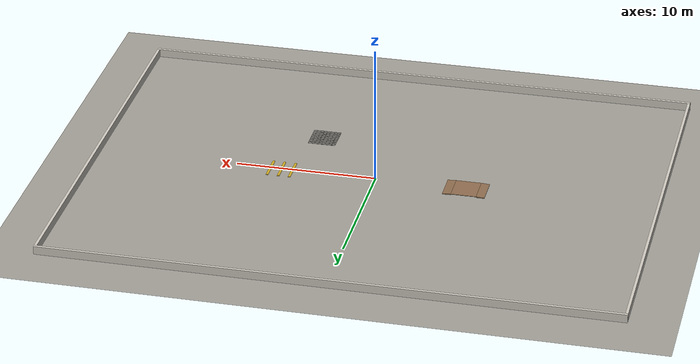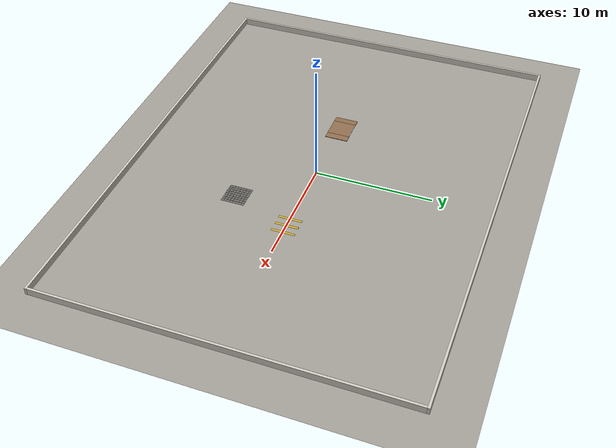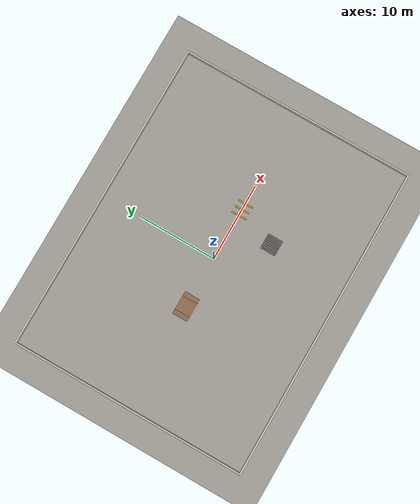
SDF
<?xml version="1.0"?>
<sdf version="1.8">
  <world name="rotino_world">
    <physics name="0_5ms" type="ignored">
      <max_step_size>0.0005</max_step_size>
      <real_time_factor>1.0</real_time_factor>
    </physics>
    <gravity>0 0 -9.81</gravity>

    <plugin filename="ignition-gazebo-physics-system" name="ignition::gazebo::systems::Physics"/>
    <plugin filename="ignition-gazebo-user-commands-system" name="ignition::gazebo::systems::UserCommands"/>
    <plugin filename="ignition-gazebo-scene-broadcaster-system" name="ignition::gazebo::systems::SceneBroadcaster"/>
    <plugin filename="ignition-gazebo-imu-system" name="ignition::gazebo::systems::Imu"/>
    <plugin filename="ignition-gazebo-contact-system" name="ignition::gazebo::systems::Contact"/>
    <plugin filename="ignition-gazebo-apply-link-wrench-system" name="ignition::gazebo::systems::ApplyLinkWrench"/>

    <light type="directional" name="sun">
      <cast_shadows>true</cast_shadows>
      <pose>0 -3 4 0 0 0</pose>
      <diffuse>0.85 0.85 0.85 1</diffuse>
      <specular>0.2 0.2 0.2 1</specular>
      <direction>0.2 0.3 -1</direction>
    </light>

    <model name="ground_plane">
      <static>true</static>
      <link name="link">
        <collision name="collision">
          <geometry><plane><normal>0 0 1</normal><size>40 30</size></plane></geometry>
          <surface>
            <friction><ode><mu>2.2</mu><mu2>2.2</mu2></ode></friction>
          </surface>
        </collision>
        <visual name="visual">
          <geometry><plane><normal>0 0 1</normal><size>40 30</size></plane></geometry>
          <material>
            <ambient>0.62 0.61 0.58 1</ambient>
            <diffuse>0.62 0.61 0.58 1</diffuse>
            <specular>0.08 0.08 0.08 1</specular>
            <pbr><metal><roughness>0.9</roughness><metalness>0.0</metalness></metal></pbr>
          </material>
        </visual>
      </link>
    </model>

    <model name="walls">
      <static>true</static>
      <link name="link">
        <collision name="north_collision"><pose>0 15.1 0.3 0 0 0</pose><geometry><box><size>40.4 0.2 0.6</size></box></geometry><surface><friction><ode><mu>2.2</mu><mu2>2.2</mu2></ode></friction></surface></collision>
        <visual name="north_visual"><pose>0 15.1 0.3 0 0 0</pose><geometry><box><size>40.4 0.2 0.6</size></box></geometry><material><ambient>0.8 0.78 0.74 1</ambient><diffuse>0.8 0.78 0.74 1</diffuse><specular>0.05 0.05 0.05 1</specular><pbr><metal><roughness>0.9</roughness><metalness>0</metalness></metal></pbr></material></visual>
        <collision name="south_collision"><pose>0 -15.1 0.3 0 0 0</pose><geometry><box><size>40.4 0.2 0.6</size></box></geometry><surface><friction><ode><mu>2.2</mu><mu2>2.2</mu2></ode></friction></surface></collision>
        <visual name="south_visual"><pose>0 -15.1 0.3 0 0 0</pose><geometry><box><size>40.4 0.2 0.6</size></box></geometry><material><ambient>0.8 0.78 0.74 1</ambient><diffuse>0.8 0.78 0.74 1</diffuse><specular>0.05 0.05 0.05 1</specular><pbr><metal><roughness>0.9</roughness><metalness>0</metalness></metal></pbr></material></visual>
        <collision name="east_collision"><pose>20.1 0 0.3 0 0 0</pose><geometry><box><size>0.2 30 0.6</size></box></geometry><surface><friction><ode><mu>2.2</mu><mu2>2.2</mu2></ode></friction></surface></collision>
        <visual name="east_visual"><pose>20.1 0 0.3 0 0 0</pose><geometry><box><size>0.2 30 0.6</size></box></geometry><material><ambient>0.8 0.78 0.74 1</ambient><diffuse>0.8 0.78 0.74 1</diffuse><specular>0.05 0.05 0.05 1</specular><pbr><metal><roughness>0.9</roughness><metalness>0</metalness></metal></pbr></material></visual>
        <collision name="west_collision"><pose>-20.1 0 0.3 0 0 0</pose><geometry><box><size>0.2 30 0.6</size></box></geometry><surface><friction><ode><mu>2.2</mu><mu2>2.2</mu2></ode></friction></surface></collision>
        <visual name="west_visual"><pose>-20.1 0 0.3 0 0 0</pose><geometry><box><size>0.2 30 0.6</size></box></geometry><material><ambient>0.8 0.78 0.74 1</ambient><diffuse>0.8 0.78 0.74 1</diffuse><specular>0.05 0.05 0.05 1</specular><pbr><metal><roughness>0.9</roughness><metalness>0</metalness></metal></pbr></material></visual>
      </link>
    </model>

    <model name="ground_uneven">
      <static>true</static>
      <link name="link">
        <collision name="bump0_collision"><pose>6.0 0 -0.08 1.5708 0 0</pose><geometry><cylinder><radius>0.10</radius><length>2.0</length></cylinder></geometry><surface><friction><ode><mu>2.2</mu><mu2>2.2</mu2></ode></friction></surface></collision>
        <visual name="bump0_visual"><pose>6.0 0 -0.08 1.5708 0 0</pose><geometry><cylinder><radius>0.10</radius><length>2.0</length></cylinder></geometry><material><ambient>0.85 0.7 0.15 1</ambient><diffuse>0.85 0.7 0.15 1</diffuse><specular>0.05 0.05 0.05 1</specular><pbr><metal><roughness>0.9</roughness><metalness>0</metalness></metal></pbr></material></visual>
        <collision name="bump1_collision"><pose>6.8 0 -0.08 1.5708 0 0</pose><geometry><cylinder><radius>0.10</radius><length>2.0</length></cylinder></geometry><surface><friction><ode><mu>2.2</mu><mu2>2.2</mu2></ode></friction></surface></collision>
        <visual name="bump1_visual"><pose>6.8 0 -0.08 1.5708 0 0</pose><geometry><cylinder><radius>0.10</radius><length>2.0</length></cylinder></geometry><material><ambient>0.85 0.7 0.15 1</ambient><diffuse>0.85 0.7 0.15 1</diffuse><specular>0.05 0.05 0.05 1</specular><pbr><metal><roughness>0.9</roughness><metalness>0</metalness></metal></pbr></material></visual>
        <collision name="bump2_collision"><pose>7.6 0 -0.08 1.5708 0 0</pose><geometry><cylinder><radius>0.10</radius><length>2.0</length></cylinder></geometry><surface><friction><ode><mu>2.2</mu><mu2>2.2</mu2></ode></friction></surface></collision>
        <visual name="bump2_visual"><pose>7.6 0 -0.08 1.5708 0 0</pose><geometry><cylinder><radius>0.10</radius><length>2.0</length></cylinder></geometry><material><ambient>0.85 0.7 0.15 1</ambient><diffuse>0.85 0.7 0.15 1</diffuse><specular>0.05 0.05 0.05 1</specular><pbr><metal><roughness>0.9</roughness><metalness>0</metalness></metal></pbr></material></visual>
        <collision name="ramp_up_collision"><pose>-5.3025 0.000 -0.0349 0 0.04996 0</pose><geometry><box><size>0.6007 2.0 0.1</size></box></geometry><surface><friction><ode><mu>2.2</mu><mu2>2.2</mu2></ode></friction></surface></collision>
        <visual name="ramp_up_visual"><pose>-5.3025 0.000 -0.0349 0 0.04996 0</pose><geometry><box><size>0.6007 2.0 0.1</size></box></geometry><material><ambient>0.55 0.42 0.3 1</ambient><diffuse>0.55 0.42 0.3 1</diffuse><specular>0.05 0.05 0.05 1</specular><pbr><metal><roughness>0.9</roughness><metalness>0</metalness></metal></pbr></material></visual>
        <collision name="plateau_collision"><pose>-6.5 0 0.015 0 0 0</pose><geometry><box><size>1.8 2.0 0.03</size></box></geometry><surface><friction><ode><mu>2.2</mu><mu2>2.2</mu2></ode></friction></surface></collision>
        <visual name="plateau_visual"><pose>-6.5 0 0.015 0 0 0</pose><geometry><box><size>1.8 2.0 0.03</size></box></geometry><material><ambient>0.55 0.42 0.3 1</ambient><diffuse>0.55 0.42 0.3 1</diffuse><specular>0.05 0.05 0.05 1</specular><pbr><metal><roughness>0.9</roughness><metalness>0</metalness></metal></pbr></material></visual>
        <collision name="ramp_down_collision"><pose>-7.6975 0.000 -0.0349 0 -0.04996 0</pose><geometry><box><size>0.6007 2.0 0.1</size></box></geometry><surface><friction><ode><mu>2.2</mu><mu2>2.2</mu2></ode></friction></surface></collision>
        <visual name="ramp_down_visual"><pose>-7.6975 0.000 -0.0349 0 -0.04996 0</pose><geometry><box><size>0.6007 2.0 0.1</size></box></geometry><material><ambient>0.55 0.42 0.3 1</ambient><diffuse>0.55 0.42 0.3 1</diffuse><specular>0.05 0.05 0.05 1</specular><pbr><metal><roughness>0.9</roughness><metalness>0</metalness></metal></pbr></material></visual>
        <collision name="tile0_0_collision"><pose>4.000 -6.000 0.0043 0 0 0</pose><geometry><box><size>0.24 0.24 0.0086</size></box></geometry><surface><friction><ode><mu>2.2</mu><mu2>2.2</mu2></ode></friction></surface></collision>
        <visual name="tile0_0_visual"><pose>4.000 -6.000 0.0043 0 0 0</pose><geometry><box><size>0.24 0.24 0.0086</size></box></geometry><material><ambient>0.4142778776255135 0.4042778776255135 0.38427787762551346 1</ambient><diffuse>0.4142778776255135 0.4042778776255135 0.38427787762551346 1</diffuse><specular>0.05 0.05 0.05 1</specular><pbr><metal><roughness>0.9</roughness><metalness>0</metalness></metal></pbr></material></visual>
        <collision name="tile0_1_collision"><pose>4.000 -5.750 0.0066 0 0 0</pose><geometry><box><size>0.24 0.24 0.0132</size></box></geometry><surface><friction><ode><mu>2.2</mu><mu2>2.2</mu2></ode></friction></surface></collision>
        <visual name="tile0_1_visual"><pose>4.000 -5.750 0.0066 0 0 0</pose><geometry><box><size>0.24 0.24 0.0132</size></box></geometry><material><ambient>0.43265375351775714 0.42265375351775714 0.4026537535177571 1</ambient><diffuse>0.43265375351775714 0.42265375351775714 0.4026537535177571 1</diffuse><specular>0.05 0.05 0.05 1</specular><pbr><metal><roughness>0.9</roughness><metalness>0</metalness></metal></pbr></material></visual>
        <collision name="tile0_2_collision"><pose>4.000 -5.500 0.0053 0 0 0</pose><geometry><box><size>0.24 0.24 0.0105</size></box></geometry><surface><friction><ode><mu>2.2</mu><mu2>2.2</mu2></ode></friction></surface></collision>
        <visual name="tile0_2_visual"><pose>4.000 -5.500 0.0053 0 0 0</pose><geometry><box><size>0.24 0.24 0.0105</size></box></geometry><material><ambient>0.42219730999288474 0.41219730999288473 0.3921973099928847 1</ambient><diffuse>0.42219730999288474 0.41219730999288473 0.3921973099928847 1</diffuse><specular>0.05 0.05 0.05 1</specular><pbr><metal><roughness>0.9</roughness><metalness>0</metalness></metal></pbr></material></visual>
        <collision name="tile0_3_collision"><pose>4.000 -5.250 0.0070 0 0 0</pose><geometry><box><size>0.24 0.24 0.0141</size></box></geometry><surface><friction><ode><mu>2.2</mu><mu2>2.2</mu2></ode></friction></surface></collision>
        <visual name="tile0_3_visual"><pose>4.000 -5.250 0.0070 0 0 0</pose><geometry><box><size>0.24 0.24 0.0141</size></box></geometry><material><ambient>0.4362352023157717 0.42623520231577167 0.40623520231577165 1</ambient><diffuse>0.4362352023157717 0.42623520231577167 0.40623520231577165 1</diffuse><specular>0.05 0.05 0.05 1</specular><pbr><metal><roughness>0.9</roughness><metalness>0</metalness></metal></pbr></material></visual>
        <collision name="tile0_4_collision"><pose>4.000 -5.000 0.0072 0 0 0</pose><geometry><box><size>0.24 0.24 0.0144</size></box></geometry><surface><friction><ode><mu>2.2</mu><mu2>2.2</mu2></ode></friction></surface></collision>
        <visual name="tile0_4_visual"><pose>4.000 -5.000 0.0072 0 0 0</pose><geometry><box><size>0.24 0.24 0.0144</size></box></geometry><material><ambient>0.43754321824648323 0.4275432182464832 0.4075432182464832 1</ambient><diffuse>0.43754321824648323 0.4275432182464832 0.4075432182464832 1</diffuse><specular>0.05 0.05 0.05 1</specular><pbr><metal><roughness>0.9</roughness><metalness>0</metalness></metal></pbr></material></visual>
        <collision name="tile0_5_collision"><pose>4.000 -4.750 0.0030 0 0 0</pose><geometry><box><size>0.24 0.24 0.0060</size></box></geometry><surface><friction><ode><mu>2.2</mu><mu2>2.2</mu2></ode></friction></surface></collision>
        <visual name="tile0_5_visual"><pose>4.000 -4.750 0.0030 0 0 0</pose><geometry><box><size>0.24 0.24 0.0060</size></box></geometry><material><ambient>0.4039317315543888 0.39393173155438876 0.37393173155438875 1</ambient><diffuse>0.4039317315543888 0.39393173155438876 0.37393173155438875 1</diffuse><specular>0.05 0.05 0.05 1</specular><pbr><metal><roughness>0.9</roughness><metalness>0</metalness></metal></pbr></material></visual>
        <collision name="tile0_6_collision"><pose>4.000 -4.500 0.0026 0 0 0</pose><geometry><box><size>0.24 0.24 0.0052</size></box></geometry><surface><friction><ode><mu>2.2</mu><mu2>2.2</mu2></ode></friction></surface></collision>
        <visual name="tile0_6_visual"><pose>4.000 -4.500 0.0026 0 0 0</pose><geometry><box><size>0.24 0.24 0.0052</size></box></geometry><material><ambient>0.40079007949329243 0.3907900794932924 0.3707900794932924 1</ambient><diffuse>0.40079007949329243 0.3907900794932924 0.3707900794932924 1</diffuse><specular>0.05 0.05 0.05 1</specular><pbr><metal><roughness>0.9</roughness><metalness>0</metalness></metal></pbr></material></visual>
        <collision name="tile0_7_collision"><pose>4.000 -4.250 0.0088 0 0 0</pose><geometry><box><size>0.24 0.24 0.0176</size></box></geometry><surface><friction><ode><mu>2.2</mu><mu2>2.2</mu2></ode></friction></surface></collision>
        <visual name="tile0_7_visual"><pose>4.000 -4.250 0.0088 0 0 0</pose><geometry><box><size>0.24 0.24 0.0176</size></box></geometry><material><ambient>0.4502481449257876 0.44024814492578757 0.42024814492578755 1</ambient><diffuse>0.4502481449257876 0.44024814492578757 0.42024814492578755 1</diffuse><specular>0.05 0.05 0.05 1</specular><pbr><metal><roughness>0.9</roughness><metalness>0</metalness></metal></pbr></material></visual>
        <collision name="tile1_0_collision"><pose>4.250 -6.000 0.0044 0 0 0</pose><geometry><box><size>0.24 0.24 0.0089</size></box></geometry><surface><friction><ode><mu>2.2</mu><mu2>2.2</mu2></ode></friction></surface></collision>
        <visual name="tile1_0_visual"><pose>4.250 -6.000 0.0044 0 0 0</pose><geometry><box><size>0.24 0.24 0.0089</size></box></geometry><material><ambient>0.4155612408596805 0.4055612408596805 0.38556124085968047 1</ambient><diffuse>0.4155612408596805 0.4055612408596805 0.38556124085968047 1</diffuse><specular>0.05 0.05 0.05 1</specular><pbr><metal><roughness>0.9</roughness><metalness>0</metalness></metal></pbr></material></visual>
        <collision name="tile1_1_collision"><pose>4.250 -5.750 0.0043 0 0 0</pose><geometry><box><size>0.24 0.24 0.0085</size></box></geometry><surface><friction><ode><mu>2.2</mu><mu2>2.2</mu2></ode></friction></surface></collision>
        <visual name="tile1_1_visual"><pose>4.250 -5.750 0.0043 0 0 0</pose><geometry><box><size>0.24 0.24 0.0085</size></box></geometry><material><ambient>0.4140598576628018 0.4040598576628018 0.38405985766280176 1</ambient><diffuse>0.4140598576628018 0.4040598576628018 0.38405985766280176 1</diffuse><specular>0.05 0.05 0.05 1</specular><pbr><metal><roughness>0.9</roughness><metalness>0</metalness></metal></pbr></material></visual>
        <collision name="tile1_2_collision"><pose>4.250 -5.500 0.0100 0 0 0</pose><geometry><box><size>0.24 0.24 0.0199</size></box></geometry><surface><friction><ode><mu>2.2</mu><mu2>2.2</mu2></ode></friction></surface></collision>
        <visual name="tile1_2_visual"><pose>4.250 -5.500 0.0100 0 0 0</pose><geometry><box><size>0.24 0.24 0.0199</size></box></geometry><material><ambient>0.45973869013062774 0.4497386901306277 0.4297386901306277 1</ambient><diffuse>0.45973869013062774 0.4497386901306277 0.4297386901306277 1</diffuse><specular>0.05 0.05 0.05 1</specular><pbr><metal><roughness>0.9</roughness><metalness>0</metalness></metal></pbr></material></visual>
        <collision name="tile1_3_collision"><pose>4.250 -5.250 0.0060 0 0 0</pose><geometry><box><size>0.24 0.24 0.0121</size></box></geometry><surface><friction><ode><mu>2.2</mu><mu2>2.2</mu2></ode></friction></surface></collision>
        <visual name="tile1_3_visual"><pose>4.250 -5.250 0.0060 0 0 0</pose><geometry><box><size>0.24 0.24 0.0121</size></box></geometry><material><ambient>0.4282158104513469 0.41821581045134687 0.39821581045134685 1</ambient><diffuse>0.4282158104513469 0.41821581045134687 0.39821581045134685 1</diffuse><specular>0.05 0.05 0.05 1</specular><pbr><metal><roughness>0.9</roughness><metalness>0</metalness></metal></pbr></material></visual>
        <collision name="tile1_4_collision"><pose>4.250 -5.000 0.0088 0 0 0</pose><geometry><box><size>0.24 0.24 0.0175</size></box></geometry><surface><friction><ode><mu>2.2</mu><mu2>2.2</mu2></ode></friction></surface></collision>
        <visual name="tile1_4_visual"><pose>4.250 -5.000 0.0088 0 0 0</pose><geometry><box><size>0.24 0.24 0.0175</size></box></geometry><material><ambient>0.45018768707646334 0.44018768707646333 0.4201876870764633 1</ambient><diffuse>0.45018768707646334 0.44018768707646333 0.4201876870764633 1</diffuse><specular>0.05 0.05 0.05 1</specular><pbr><metal><roughness>0.9</roughness><metalness>0</metalness></metal></pbr></material></visual>
        <collision name="tile1_5_collision"><pose>4.250 -4.750 0.0061 0 0 0</pose><geometry><box><size>0.24 0.24 0.0121</size></box></geometry><surface><friction><ode><mu>2.2</mu><mu2>2.2</mu2></ode></friction></surface></collision>
        <visual name="tile1_5_visual"><pose>4.250 -4.750 0.0061 0 0 0</pose><geometry><box><size>0.24 0.24 0.0121</size></box></geometry><material><ambient>0.4285811925219601 0.4185811925219601 0.39858119252196006 1</ambient><diffuse>0.4285811925219601 0.4185811925219601 0.39858119252196006 1</diffuse><specular>0.05 0.05 0.05 1</specular><pbr><metal><roughness>0.9</roughness><metalness>0</metalness></metal></pbr></material></visual>
        <collision name="tile1_6_collision"><pose>4.250 -4.500 0.0073 0 0 0</pose><geometry><box><size>0.24 0.24 0.0146</size></box></geometry><surface><friction><ode><mu>2.2</mu><mu2>2.2</mu2></ode></friction></surface></collision>
        <visual name="tile1_6_visual"><pose>4.250 -4.500 0.0073 0 0 0</pose><geometry><box><size>0.24 0.24 0.0146</size></box></geometry><material><ambient>0.4383440884326497 0.4283440884326497 0.4083440884326497 1</ambient><diffuse>0.4383440884326497 0.4283440884326497 0.4083440884326497 1</diffuse><specular>0.05 0.05 0.05 1</specular><pbr><metal><roughness>0.9</roughness><metalness>0</metalness></metal></pbr></material></visual>
        <collision name="tile1_7_collision"><pose>4.250 -4.250 0.0036 0 0 0</pose><geometry><box><size>0.24 0.24 0.0073</size></box></geometry><surface><friction><ode><mu>2.2</mu><mu2>2.2</mu2></ode></friction></surface></collision>
        <visual name="tile1_7_visual"><pose>4.250 -4.250 0.0036 0 0 0</pose><geometry><box><size>0.24 0.24 0.0073</size></box></geometry><material><ambient>0.4090369854414114 0.3990369854414114 0.3790369854414114 1</ambient><diffuse>0.4090369854414114 0.3990369854414114 0.3790369854414114 1</diffuse><specular>0.05 0.05 0.05 1</specular><pbr><metal><roughness>0.9</roughness><metalness>0</metalness></metal></pbr></material></visual>
        <collision name="tile2_0_collision"><pose>4.500 -6.000 0.0073 0 0 0</pose><geometry><box><size>0.24 0.24 0.0145</size></box></geometry><surface><friction><ode><mu>2.2</mu><mu2>2.2</mu2></ode></friction></surface></collision>
        <visual name="tile2_0_visual"><pose>4.500 -6.000 0.0073 0 0 0</pose><geometry><box><size>0.24 0.24 0.0145</size></box></geometry><material><ambient>0.43809163949711133 0.4280916394971113 0.4080916394971113 1</ambient><diffuse>0.43809163949711133 0.4280916394971113 0.4080916394971113 1</diffuse><specular>0.05 0.05 0.05 1</specular><pbr><metal><roughness>0.9</roughness><metalness>0</metalness></metal></pbr></material></visual>
        <collision name="tile2_1_collision"><pose>4.500 -5.750 0.0090 0 0 0</pose><geometry><box><size>0.24 0.24 0.0180</size></box></geometry><surface><friction><ode><mu>2.2</mu><mu2>2.2</mu2></ode></friction></surface></collision>
        <visual name="tile2_1_visual"><pose>4.500 -5.750 0.0090 0 0 0</pose><geometry><box><size>0.24 0.24 0.0180</size></box></geometry><material><ambient>0.4520827184285978 0.4420827184285978 0.4220827184285978 1</ambient><diffuse>0.4520827184285978 0.4420827184285978 0.4220827184285978 1</diffuse><specular>0.05 0.05 0.05 1</specular><pbr><metal><roughness>0.9</roughness><metalness>0</metalness></metal></pbr></material></visual>
        <collision name="tile2_2_collision"><pose>4.500 -5.500 0.0064 0 0 0</pose><geometry><box><size>0.24 0.24 0.0128</size></box></geometry><surface><friction><ode><mu>2.2</mu><mu2>2.2</mu2></ode></friction></surface></collision>
        <visual name="tile2_2_visual"><pose>4.500 -5.500 0.0064 0 0 0</pose><geometry><box><size>0.24 0.24 0.0128</size></box></geometry><material><ambient>0.4313908726229981 0.42139087262299807 0.40139087262299805 1</ambient><diffuse>0.4313908726229981 0.42139087262299807 0.40139087262299805 1</diffuse><specular>0.05 0.05 0.05 1</specular><pbr><metal><roughness>0.9</roughness><metalness>0</metalness></metal></pbr></material></visual>
        <collision name="tile2_3_collision"><pose>4.500 -5.250 0.0081 0 0 0</pose><geometry><box><size>0.24 0.24 0.0161</size></box></geometry><surface><friction><ode><mu>2.2</mu><mu2>2.2</mu2></ode></friction></surface></collision>
        <visual name="tile2_3_visual"><pose>4.500 -5.250 0.0081 0 0 0</pose><geometry><box><size>0.24 0.24 0.0161</size></box></geometry><material><ambient>0.4444751113720894 0.4344751113720894 0.41447511137208937 1</ambient><diffuse>0.4444751113720894 0.4344751113720894 0.41447511137208937 1</diffuse><specular>0.05 0.05 0.05 1</specular><pbr><metal><roughness>0.9</roughness><metalness>0</metalness></metal></pbr></material></visual>
        <collision name="tile2_4_collision"><pose>4.500 -5.000 0.0075 0 0 0</pose><geometry><box><size>0.24 0.24 0.0151</size></box></geometry><surface><friction><ode><mu>2.2</mu><mu2>2.2</mu2></ode></friction></surface></collision>
        <visual name="tile2_4_visual"><pose>4.500 -5.000 0.0075 0 0 0</pose><geometry><box><size>0.24 0.24 0.0151</size></box></geometry><material><ambient>0.44028468852217556 0.43028468852217555 0.41028468852217553 1</ambient><diffuse>0.44028468852217556 0.43028468852217555 0.41028468852217553 1</diffuse><specular>0.05 0.05 0.05 1</specular><pbr><metal><roughness>0.9</roughness><metalness>0</metalness></metal></pbr></material></visual>
        <collision name="tile2_5_collision"><pose>4.500 -4.750 0.0030 0 0 0</pose><geometry><box><size>0.24 0.24 0.0060</size></box></geometry><surface><friction><ode><mu>2.2</mu><mu2>2.2</mu2></ode></friction></surface></collision>
        <visual name="tile2_5_visual"><pose>4.500 -4.750 0.0030 0 0 0</pose><geometry><box><size>0.24 0.24 0.0060</size></box></geometry><material><ambient>0.40384188629361983 0.3938418862936198 0.3738418862936198 1</ambient><diffuse>0.40384188629361983 0.3938418862936198 0.3738418862936198 1</diffuse><specular>0.05 0.05 0.05 1</specular><pbr><metal><roughness>0.9</roughness><metalness>0</metalness></metal></pbr></material></visual>
        <collision name="tile2_6_collision"><pose>4.500 -4.500 0.0082 0 0 0</pose><geometry><box><size>0.24 0.24 0.0164</size></box></geometry><surface><friction><ode><mu>2.2</mu><mu2>2.2</mu2></ode></friction></surface></collision>
        <visual name="tile2_6_visual"><pose>4.500 -4.500 0.0082 0 0 0</pose><geometry><box><size>0.24 0.24 0.0164</size></box></geometry><material><ambient>0.44549381477720906 0.43549381477720905 0.41549381477720904 1</ambient><diffuse>0.44549381477720906 0.43549381477720905 0.41549381477720904 1</diffuse><specular>0.05 0.05 0.05 1</specular><pbr><metal><roughness>0.9</roughness><metalness>0</metalness></metal></pbr></material></visual>
        <collision name="tile2_7_collision"><pose>4.500 -4.250 0.0069 0 0 0</pose><geometry><box><size>0.24 0.24 0.0139</size></box></geometry><surface><friction><ode><mu>2.2</mu><mu2>2.2</mu2></ode></friction></surface></collision>
        <visual name="tile2_7_visual"><pose>4.500 -4.250 0.0069 0 0 0</pose><geometry><box><size>0.24 0.24 0.0139</size></box></geometry><material><ambient>0.4354659749758791 0.42546597497587907 0.40546597497587905 1</ambient><diffuse>0.4354659749758791 0.42546597497587907 0.40546597497587905 1</diffuse><specular>0.05 0.05 0.05 1</specular><pbr><metal><roughness>0.9</roughness><metalness>0</metalness></metal></pbr></material></visual>
        <collision name="tile3_0_collision"><pose>4.750 -6.000 0.0048 0 0 0</pose><geometry><box><size>0.24 0.24 0.0095</size></box></geometry><surface><friction><ode><mu>2.2</mu><mu2>2.2</mu2></ode></friction></surface></collision>
        <visual name="tile3_0_visual"><pose>4.750 -6.000 0.0048 0 0 0</pose><geometry><box><size>0.24 0.24 0.0095</size></box></geometry><material><ambient>0.41807605957094274 0.40807605957094273 0.3880760595709427 1</ambient><diffuse>0.41807605957094274 0.40807605957094273 0.3880760595709427 1</diffuse><specular>0.05 0.05 0.05 1</specular><pbr><metal><roughness>0.9</roughness><metalness>0</metalness></metal></pbr></material></visual>
        <collision name="tile3_1_collision"><pose>4.750 -5.750 0.0027 0 0 0</pose><geometry><box><size>0.24 0.24 0.0055</size></box></geometry><surface><friction><ode><mu>2.2</mu><mu2>2.2</mu2></ode></friction></surface></collision>
        <visual name="tile3_1_visual"><pose>4.750 -5.750 0.0027 0 0 0</pose><geometry><box><size>0.24 0.24 0.0055</size></box></geometry><material><ambient>0.401860705088185 0.391860705088185 0.371860705088185 1</ambient><diffuse>0.401860705088185 0.391860705088185 0.371860705088185 1</diffuse><specular>0.05 0.05 0.05 1</specular><pbr><metal><roughness>0.9</roughness><metalness>0</metalness></metal></pbr></material></visual>
        <collision name="tile3_2_collision"><pose>4.750 -5.500 0.0090 0 0 0</pose><geometry><box><size>0.24 0.24 0.0180</size></box></geometry><surface><friction><ode><mu>2.2</mu><mu2>2.2</mu2></ode></friction></surface></collision>
        <visual name="tile3_2_visual"><pose>4.750 -5.500 0.0090 0 0 0</pose><geometry><box><size>0.24 0.24 0.0180</size></box></geometry><material><ambient>0.4519316342187367 0.4419316342187367 0.4219316342187367 1</ambient><diffuse>0.4519316342187367 0.4419316342187367 0.4219316342187367 1</diffuse><specular>0.05 0.05 0.05 1</specular><pbr><metal><roughness>0.9</roughness><metalness>0</metalness></metal></pbr></material></visual>
        <collision name="tile3_3_collision"><pose>4.750 -5.250 0.0060 0 0 0</pose><geometry><box><size>0.24 0.24 0.0121</size></box></geometry><surface><friction><ode><mu>2.2</mu><mu2>2.2</mu2></ode></friction></surface></collision>
        <visual name="tile3_3_visual"><pose>4.750 -5.250 0.0060 0 0 0</pose><geometry><box><size>0.24 0.24 0.0121</size></box></geometry><material><ambient>0.428364945319928 0.418364945319928 0.398364945319928 1</ambient><diffuse>0.428364945319928 0.418364945319928 0.398364945319928 1</diffuse><specular>0.05 0.05 0.05 1</specular><pbr><metal><roughness>0.9</roughness><metalness>0</metalness></metal></pbr></material></visual>
        <collision name="tile3_4_collision"><pose>4.750 -5.000 0.0079 0 0 0</pose><geometry><box><size>0.24 0.24 0.0158</size></box></geometry><surface><friction><ode><mu>2.2</mu><mu2>2.2</mu2></ode></friction></surface></collision>
        <visual name="tile3_4_visual"><pose>4.750 -5.000 0.0079 0 0 0</pose><geometry><box><size>0.24 0.24 0.0158</size></box></geometry><material><ambient>0.44312943544394817 0.43312943544394816 0.41312943544394815 1</ambient><diffuse>0.44312943544394817 0.43312943544394816 0.41312943544394815 1</diffuse><specular>0.05 0.05 0.05 1</specular><pbr><metal><roughness>0.9</roughness><metalness>0</metalness></metal></pbr></material></visual>
        <collision name="tile3_5_collision"><pose>4.750 -4.750 0.0091 0 0 0</pose><geometry><box><size>0.24 0.24 0.0182</size></box></geometry><surface><friction><ode><mu>2.2</mu><mu2>2.2</mu2></ode></friction></surface></collision>
        <visual name="tile3_5_visual"><pose>4.750 -4.750 0.0091 0 0 0</pose><geometry><box><size>0.24 0.24 0.0182</size></box></geometry><material><ambient>0.4527287680153289 0.4427287680153289 0.4227287680153289 1</ambient><diffuse>0.4527287680153289 0.4427287680153289 0.4227287680153289 1</diffuse><specular>0.05 0.05 0.05 1</specular><pbr><metal><roughness>0.9</roughness><metalness>0</metalness></metal></pbr></material></visual>
        <collision name="tile3_6_collision"><pose>4.750 -4.500 0.0079 0 0 0</pose><geometry><box><size>0.24 0.24 0.0157</size></box></geometry><surface><friction><ode><mu>2.2</mu><mu2>2.2</mu2></ode></friction></surface></collision>
        <visual name="tile3_6_visual"><pose>4.750 -4.500 0.0079 0 0 0</pose><geometry><box><size>0.24 0.24 0.0157</size></box></geometry><material><ambient>0.44284776901667217 0.43284776901667216 0.41284776901667214 1</ambient><diffuse>0.44284776901667217 0.43284776901667216 0.41284776901667214 1</diffuse><specular>0.05 0.05 0.05 1</specular><pbr><metal><roughness>0.9</roughness><metalness>0</metalness></metal></pbr></material></visual>
        <collision name="tile3_7_collision"><pose>4.750 -4.250 0.0094 0 0 0</pose><geometry><box><size>0.24 0.24 0.0188</size></box></geometry><surface><friction><ode><mu>2.2</mu><mu2>2.2</mu2></ode></friction></surface></collision>
        <visual name="tile3_7_visual"><pose>4.750 -4.250 0.0094 0 0 0</pose><geometry><box><size>0.24 0.24 0.0188</size></box></geometry><material><ambient>0.45526592005503247 0.44526592005503246 0.42526592005503244 1</ambient><diffuse>0.45526592005503247 0.44526592005503246 0.42526592005503244 1</diffuse><specular>0.05 0.05 0.05 1</specular><pbr><metal><roughness>0.9</roughness><metalness>0</metalness></metal></pbr></material></visual>
        <collision name="tile4_0_collision"><pose>5.000 -6.000 0.0055 0 0 0</pose><geometry><box><size>0.24 0.24 0.0109</size></box></geometry><surface><friction><ode><mu>2.2</mu><mu2>2.2</mu2></ode></friction></surface></collision>
        <visual name="tile4_0_visual"><pose>5.000 -6.000 0.0055 0 0 0</pose><geometry><box><size>0.24 0.24 0.0109</size></box></geometry><material><ambient>0.42369780424004466 0.41369780424004465 0.39369780424004464 1</ambient><diffuse>0.42369780424004466 0.41369780424004465 0.39369780424004464 1</diffuse><specular>0.05 0.05 0.05 1</specular><pbr><metal><roughness>0.9</roughness><metalness>0</metalness></metal></pbr></material></visual>
        <collision name="tile4_1_collision"><pose>5.000 -5.750 0.0085 0 0 0</pose><geometry><box><size>0.24 0.24 0.0170</size></box></geometry><surface><friction><ode><mu>2.2</mu><mu2>2.2</mu2></ode></friction></surface></collision>
        <visual name="tile4_1_visual"><pose>5.000 -5.750 0.0085 0 0 0</pose><geometry><box><size>0.24 0.24 0.0170</size></box></geometry><material><ambient>0.4480545262591137 0.4380545262591137 0.41805452625911366 1</ambient><diffuse>0.4480545262591137 0.4380545262591137 0.41805452625911366 1</diffuse><specular>0.05 0.05 0.05 1</specular><pbr><metal><roughness>0.9</roughness><metalness>0</metalness></metal></pbr></material></visual>
        <collision name="tile4_2_collision"><pose>5.000 -5.500 0.0058 0 0 0</pose><geometry><box><size>0.24 0.24 0.0117</size></box></geometry><surface><friction><ode><mu>2.2</mu><mu2>2.2</mu2></ode></friction></surface></collision>
        <visual name="tile4_2_visual"><pose>5.000 -5.500 0.0058 0 0 0</pose><geometry><box><size>0.24 0.24 0.0117</size></box></geometry><material><ambient>0.4266772633630456 0.4166772633630456 0.3966772633630456 1</ambient><diffuse>0.4266772633630456 0.4166772633630456 0.3966772633630456 1</diffuse><specular>0.05 0.05 0.05 1</specular><pbr><metal><roughness>0.9</roughness><metalness>0</metalness></metal></pbr></material></visual>
        <collision name="tile4_3_collision"><pose>5.000 -5.250 0.0095 0 0 0</pose><geometry><box><size>0.24 0.24 0.0190</size></box></geometry><surface><friction><ode><mu>2.2</mu><mu2>2.2</mu2></ode></friction></surface></collision>
        <visual name="tile4_3_visual"><pose>5.000 -5.250 0.0095 0 0 0</pose><geometry><box><size>0.24 0.24 0.0190</size></box></geometry><material><ambient>0.45613520330227125 0.44613520330227124 0.4261352033022712 1</ambient><diffuse>0.45613520330227125 0.44613520330227124 0.4261352033022712 1</diffuse><specular>0.05 0.05 0.05 1</specular><pbr><metal><roughness>0.9</roughness><metalness>0</metalness></metal></pbr></material></visual>
        <collision name="tile4_4_collision"><pose>5.000 -5.000 0.0091 0 0 0</pose><geometry><box><size>0.24 0.24 0.0182</size></box></geometry><surface><friction><ode><mu>2.2</mu><mu2>2.2</mu2></ode></friction></surface></collision>
        <visual name="tile4_4_visual"><pose>5.000 -5.000 0.0091 0 0 0</pose><geometry><box><size>0.24 0.24 0.0182</size></box></geometry><material><ambient>0.4527319996202825 0.4427319996202825 0.42273199962028246 1</ambient><diffuse>0.4527319996202825 0.4427319996202825 0.42273199962028246 1</diffuse><specular>0.05 0.05 0.05 1</specular><pbr><metal><roughness>0.9</roughness><metalness>0</metalness></metal></pbr></material></visual>
        <collision name="tile4_5_collision"><pose>5.000 -4.750 0.0032 0 0 0</pose><geometry><box><size>0.24 0.24 0.0065</size></box></geometry><surface><friction><ode><mu>2.2</mu><mu2>2.2</mu2></ode></friction></surface></collision>
        <visual name="tile4_5_visual"><pose>5.000 -4.750 0.0032 0 0 0</pose><geometry><box><size>0.24 0.24 0.0065</size></box></geometry><material><ambient>0.4058472585838526 0.3958472585838526 0.3758472585838526 1</ambient><diffuse>0.4058472585838526 0.3958472585838526 0.3758472585838526 1</diffuse><specular>0.05 0.05 0.05 1</specular><pbr><metal><roughness>0.9</roughness><metalness>0</metalness></metal></pbr></material></visual>
        <collision name="tile4_6_collision"><pose>5.000 -4.500 0.0035 0 0 0</pose><geometry><box><size>0.24 0.24 0.0070</size></box></geometry><surface><friction><ode><mu>2.2</mu><mu2>2.2</mu2></ode></friction></surface></collision>
        <visual name="tile4_6_visual"><pose>5.000 -4.500 0.0035 0 0 0</pose><geometry><box><size>0.24 0.24 0.0070</size></box></geometry><material><ambient>0.4081581316120401 0.3981581316120401 0.3781581316120401 1</ambient><diffuse>0.4081581316120401 0.3981581316120401 0.3781581316120401 1</diffuse><specular>0.05 0.05 0.05 1</specular><pbr><metal><roughness>0.9</roughness><metalness>0</metalness></metal></pbr></material></visual>
        <collision name="tile4_7_collision"><pose>5.000 -4.250 0.0041 0 0 0</pose><geometry><box><size>0.24 0.24 0.0083</size></box></geometry><surface><friction><ode><mu>2.2</mu><mu2>2.2</mu2></ode></friction></surface></collision>
        <visual name="tile4_7_visual"><pose>5.000 -4.250 0.0041 0 0 0</pose><geometry><box><size>0.24 0.24 0.0083</size></box></geometry><material><ambient>0.41301921647398826 0.40301921647398825 0.38301921647398823 1</ambient><diffuse>0.41301921647398826 0.40301921647398825 0.38301921647398823 1</diffuse><specular>0.05 0.05 0.05 1</specular><pbr><metal><roughness>0.9</roughness><metalness>0</metalness></metal></pbr></material></visual>
        <collision name="tile5_0_collision"><pose>5.250 -6.000 0.0097 0 0 0</pose><geometry><box><size>0.24 0.24 0.0195</size></box></geometry><surface><friction><ode><mu>2.2</mu><mu2>2.2</mu2></ode></friction></surface></collision>
        <visual name="tile5_0_visual"><pose>5.250 -6.000 0.0097 0 0 0</pose><geometry><box><size>0.24 0.24 0.0195</size></box></geometry><material><ambient>0.45792880833389216 0.44792880833389215 0.42792880833389213 1</ambient><diffuse>0.45792880833389216 0.44792880833389215 0.42792880833389213 1</diffuse><specular>0.05 0.05 0.05 1</specular><pbr><metal><roughness>0.9</roughness><metalness>0</metalness></metal></pbr></material></visual>
        <collision name="tile5_1_collision"><pose>5.250 -5.750 0.0058 0 0 0</pose><geometry><box><size>0.24 0.24 0.0115</size></box></geometry><surface><friction><ode><mu>2.2</mu><mu2>2.2</mu2></ode></friction></surface></collision>
        <visual name="tile5_1_visual"><pose>5.250 -5.750 0.0058 0 0 0</pose><geometry><box><size>0.24 0.24 0.0115</size></box></geometry><material><ambient>0.42616971199764575 0.41616971199764574 0.3961697119976457 1</ambient><diffuse>0.42616971199764575 0.41616971199764574 0.3961697119976457 1</diffuse><specular>0.05 0.05 0.05 1</specular><pbr><metal><roughness>0.9</roughness><metalness>0</metalness></metal></pbr></material></visual>
        <collision name="tile5_2_collision"><pose>5.250 -5.500 0.0072 0 0 0</pose><geometry><box><size>0.24 0.24 0.0144</size></box></geometry><surface><friction><ode><mu>2.2</mu><mu2>2.2</mu2></ode></friction></surface></collision>
        <visual name="tile5_2_visual"><pose>5.250 -5.500 0.0072 0 0 0</pose><geometry><box><size>0.24 0.24 0.0144</size></box></geometry><material><ambient>0.43759889745200825 0.42759889745200824 0.4075988974520082 1</ambient><diffuse>0.43759889745200825 0.42759889745200824 0.4075988974520082 1</diffuse><specular>0.05 0.05 0.05 1</specular><pbr><metal><roughness>0.9</roughness><metalness>0</metalness></metal></pbr></material></visual>
        <collision name="tile5_3_collision"><pose>5.250 -5.250 0.0048 0 0 0</pose><geometry><box><size>0.24 0.24 0.0095</size></box></geometry><surface><friction><ode><mu>2.2</mu><mu2>2.2</mu2></ode></friction></surface></collision>
        <visual name="tile5_3_visual"><pose>5.250 -5.250 0.0048 0 0 0</pose><geometry><box><size>0.24 0.24 0.0095</size></box></geometry><material><ambient>0.41806157190553034 0.40806157190553033 0.3880615719055303 1</ambient><diffuse>0.41806157190553034 0.40806157190553033 0.3880615719055303 1</diffuse><specular>0.05 0.05 0.05 1</specular><pbr><metal><roughness>0.9</roughness><metalness>0</metalness></metal></pbr></material></visual>
        <collision name="tile5_4_collision"><pose>5.250 -5.000 0.0063 0 0 0</pose><geometry><box><size>0.24 0.24 0.0126</size></box></geometry><surface><friction><ode><mu>2.2</mu><mu2>2.2</mu2></ode></friction></surface></collision>
        <visual name="tile5_4_visual"><pose>5.250 -5.000 0.0063 0 0 0</pose><geometry><box><size>0.24 0.24 0.0126</size></box></geometry><material><ambient>0.4304345790297436 0.42043457902974357 0.40043457902974355 1</ambient><diffuse>0.4304345790297436 0.42043457902974357 0.40043457902974355 1</diffuse><specular>0.05 0.05 0.05 1</specular><pbr><metal><roughness>0.9</roughness><metalness>0</metalness></metal></pbr></material></visual>
        <collision name="tile5_5_collision"><pose>5.250 -4.750 0.0054 0 0 0</pose><geometry><box><size>0.24 0.24 0.0108</size></box></geometry><surface><friction><ode><mu>2.2</mu><mu2>2.2</mu2></ode></friction></surface></collision>
        <visual name="tile5_5_visual"><pose>5.250 -4.750 0.0054 0 0 0</pose><geometry><box><size>0.24 0.24 0.0108</size></box></geometry><material><ambient>0.42315197553069417 0.41315197553069416 0.39315197553069414 1</ambient><diffuse>0.42315197553069417 0.41315197553069416 0.39315197553069414 1</diffuse><specular>0.05 0.05 0.05 1</specular><pbr><metal><roughness>0.9</roughness><metalness>0</metalness></metal></pbr></material></visual>
        <collision name="tile5_6_collision"><pose>5.250 -4.500 0.0051 0 0 0</pose><geometry><box><size>0.24 0.24 0.0103</size></box></geometry><surface><friction><ode><mu>2.2</mu><mu2>2.2</mu2></ode></friction></surface></collision>
        <visual name="tile5_6_visual"><pose>5.250 -4.500 0.0051 0 0 0</pose><geometry><box><size>0.24 0.24 0.0103</size></box></geometry><material><ambient>0.4210546293262108 0.4110546293262108 0.39105462932621077 1</ambient><diffuse>0.4210546293262108 0.4110546293262108 0.39105462932621077 1</diffuse><specular>0.05 0.05 0.05 1</specular><pbr><metal><roughness>0.9</roughness><metalness>0</metalness></metal></pbr></material></visual>
        <collision name="tile5_7_collision"><pose>5.250 -4.250 0.0069 0 0 0</pose><geometry><box><size>0.24 0.24 0.0138</size></box></geometry><surface><friction><ode><mu>2.2</mu><mu2>2.2</mu2></ode></friction></surface></collision>
        <visual name="tile5_7_visual"><pose>5.250 -4.250 0.0069 0 0 0</pose><geometry><box><size>0.24 0.24 0.0138</size></box></geometry><material><ambient>0.4351044464443218 0.42510444644432177 0.40510444644432175 1</ambient><diffuse>0.4351044464443218 0.42510444644432177 0.40510444644432175 1</diffuse><specular>0.05 0.05 0.05 1</specular><pbr><metal><roughness>0.9</roughness><metalness>0</metalness></metal></pbr></material></visual>
        <collision name="tile6_0_collision"><pose>5.500 -6.000 0.0069 0 0 0</pose><geometry><box><size>0.24 0.24 0.0138</size></box></geometry><surface><friction><ode><mu>2.2</mu><mu2>2.2</mu2></ode></friction></surface></collision>
        <visual name="tile6_0_visual"><pose>5.500 -6.000 0.0069 0 0 0</pose><geometry><box><size>0.24 0.24 0.0138</size></box></geometry><material><ambient>0.4350551075782119 0.4250551075782119 0.4050551075782119 1</ambient><diffuse>0.4350551075782119 0.4250551075782119 0.4050551075782119 1</diffuse><specular>0.05 0.05 0.05 1</specular><pbr><metal><roughness>0.9</roughness><metalness>0</metalness></metal></pbr></material></visual>
        <collision name="tile6_1_collision"><pose>5.500 -5.750 0.0093 0 0 0</pose><geometry><box><size>0.24 0.24 0.0186</size></box></geometry><surface><friction><ode><mu>2.2</mu><mu2>2.2</mu2></ode></friction></surface></collision>
        <visual name="tile6_1_visual"><pose>5.500 -5.750 0.0093 0 0 0</pose><geometry><box><size>0.24 0.24 0.0186</size></box></geometry><material><ambient>0.45425210625086654 0.44425210625086653 0.4242521062508665 1</ambient><diffuse>0.45425210625086654 0.44425210625086653 0.4242521062508665 1</diffuse><specular>0.05 0.05 0.05 1</specular><pbr><metal><roughness>0.9</roughness><metalness>0</metalness></metal></pbr></material></visual>
        <collision name="tile6_2_collision"><pose>5.500 -5.500 0.0076 0 0 0</pose><geometry><box><size>0.24 0.24 0.0152</size></box></geometry><surface><friction><ode><mu>2.2</mu><mu2>2.2</mu2></ode></friction></surface></collision>
        <visual name="tile6_2_visual"><pose>5.500 -5.500 0.0076 0 0 0</pose><geometry><box><size>0.24 0.24 0.0152</size></box></geometry><material><ambient>0.44091892819809797 0.43091892819809796 0.41091892819809794 1</ambient><diffuse>0.44091892819809797 0.43091892819809796 0.41091892819809794 1</diffuse><specular>0.05 0.05 0.05 1</specular><pbr><metal><roughness>0.9</roughness><metalness>0</metalness></metal></pbr></material></visual>
        <collision name="tile6_3_collision"><pose>5.500 -5.250 0.0095 0 0 0</pose><geometry><box><size>0.24 0.24 0.0189</size></box></geometry><surface><friction><ode><mu>2.2</mu><mu2>2.2</mu2></ode></friction></surface></collision>
        <visual name="tile6_3_visual"><pose>5.500 -5.250 0.0095 0 0 0</pose><geometry><box><size>0.24 0.24 0.0189</size></box></geometry><material><ambient>0.45573673607200105 0.44573673607200104 0.425736736072001 1</ambient><diffuse>0.45573673607200105 0.44573673607200104 0.425736736072001 1</diffuse><specular>0.05 0.05 0.05 1</specular><pbr><metal><roughness>0.9</roughness><metalness>0</metalness></metal></pbr></material></visual>
        <collision name="tile6_4_collision"><pose>5.500 -5.000 0.0089 0 0 0</pose><geometry><box><size>0.24 0.24 0.0178</size></box></geometry><surface><friction><ode><mu>2.2</mu><mu2>2.2</mu2></ode></friction></surface></collision>
        <visual name="tile6_4_visual"><pose>5.500 -5.000 0.0089 0 0 0</pose><geometry><box><size>0.24 0.24 0.0178</size></box></geometry><material><ambient>0.45138403398380533 0.4413840339838053 0.4213840339838053 1</ambient><diffuse>0.45138403398380533 0.4413840339838053 0.4213840339838053 1</diffuse><specular>0.05 0.05 0.05 1</specular><pbr><metal><roughness>0.9</roughness><metalness>0</metalness></metal></pbr></material></visual>
        <collision name="tile6_5_collision"><pose>5.500 -4.750 0.0099 0 0 0</pose><geometry><box><size>0.24 0.24 0.0199</size></box></geometry><surface><friction><ode><mu>2.2</mu><mu2>2.2</mu2></ode></friction></surface></collision>
        <visual name="tile6_5_visual"><pose>5.500 -4.750 0.0099 0 0 0</pose><geometry><box><size>0.24 0.24 0.0199</size></box></geometry><material><ambient>0.45945937869212894 0.44945937869212893 0.4294593786921289 1</ambient><diffuse>0.45945937869212894 0.44945937869212893 0.4294593786921289 1</diffuse><specular>0.05 0.05 0.05 1</specular><pbr><metal><roughness>0.9</roughness><metalness>0</metalness></metal></pbr></material></visual>
        <collision name="tile6_6_collision"><pose>5.500 -4.500 0.0075 0 0 0</pose><geometry><box><size>0.24 0.24 0.0151</size></box></geometry><surface><friction><ode><mu>2.2</mu><mu2>2.2</mu2></ode></friction></surface></collision>
        <visual name="tile6_6_visual"><pose>5.500 -4.500 0.0075 0 0 0</pose><geometry><box><size>0.24 0.24 0.0151</size></box></geometry><material><ambient>0.4402764125297511 0.4302764125297511 0.41027641252975106 1</ambient><diffuse>0.4402764125297511 0.4302764125297511 0.41027641252975106 1</diffuse><specular>0.05 0.05 0.05 1</specular><pbr><metal><roughness>0.9</roughness><metalness>0</metalness></metal></pbr></material></visual>
        <collision name="tile6_7_collision"><pose>5.500 -4.250 0.0037 0 0 0</pose><geometry><box><size>0.24 0.24 0.0074</size></box></geometry><surface><friction><ode><mu>2.2</mu><mu2>2.2</mu2></ode></friction></surface></collision>
        <visual name="tile6_7_visual"><pose>5.500 -4.250 0.0037 0 0 0</pose><geometry><box><size>0.24 0.24 0.0074</size></box></geometry><material><ambient>0.40978597731826416 0.39978597731826415 0.37978597731826413 1</ambient><diffuse>0.40978597731826416 0.39978597731826415 0.37978597731826413 1</diffuse><specular>0.05 0.05 0.05 1</specular><pbr><metal><roughness>0.9</roughness><metalness>0</metalness></metal></pbr></material></visual>
        <collision name="tile7_0_collision"><pose>5.750 -6.000 0.0090 0 0 0</pose><geometry><box><size>0.24 0.24 0.0179</size></box></geometry><surface><friction><ode><mu>2.2</mu><mu2>2.2</mu2></ode></friction></surface></collision>
        <visual name="tile7_0_visual"><pose>5.750 -6.000 0.0090 0 0 0</pose><geometry><box><size>0.24 0.24 0.0179</size></box></geometry><material><ambient>0.4516382519869761 0.4416382519869761 0.4216382519869761 1</ambient><diffuse>0.4516382519869761 0.4416382519869761 0.4216382519869761 1</diffuse><specular>0.05 0.05 0.05 1</specular><pbr><metal><roughness>0.9</roughness><metalness>0</metalness></metal></pbr></material></visual>
        <collision name="tile7_1_collision"><pose>5.750 -5.750 0.0097 0 0 0</pose><geometry><box><size>0.24 0.24 0.0195</size></box></geometry><surface><friction><ode><mu>2.2</mu><mu2>2.2</mu2></ode></friction></surface></collision>
        <visual name="tile7_1_visual"><pose>5.750 -5.750 0.0097 0 0 0</pose><geometry><box><size>0.24 0.24 0.0195</size></box></geometry><material><ambient>0.4578779768385437 0.4478779768385437 0.42787797683854367 1</ambient><diffuse>0.4578779768385437 0.4478779768385437 0.42787797683854367 1</diffuse><specular>0.05 0.05 0.05 1</specular><pbr><metal><roughness>0.9</roughness><metalness>0</metalness></metal></pbr></material></visual>
        <collision name="tile7_2_collision"><pose>5.750 -5.500 0.0093 0 0 0</pose><geometry><box><size>0.24 0.24 0.0186</size></box></geometry><surface><friction><ode><mu>2.2</mu><mu2>2.2</mu2></ode></friction></surface></collision>
        <visual name="tile7_2_visual"><pose>5.750 -5.500 0.0093 0 0 0</pose><geometry><box><size>0.24 0.24 0.0186</size></box></geometry><material><ambient>0.4542817590707342 0.4442817590707342 0.4242817590707342 1</ambient><diffuse>0.4542817590707342 0.4442817590707342 0.4242817590707342 1</diffuse><specular>0.05 0.05 0.05 1</specular><pbr><metal><roughness>0.9</roughness><metalness>0</metalness></metal></pbr></material></visual>
        <collision name="tile7_3_collision"><pose>5.750 -5.250 0.0068 0 0 0</pose><geometry><box><size>0.24 0.24 0.0135</size></box></geometry><surface><friction><ode><mu>2.2</mu><mu2>2.2</mu2></ode></friction></surface></collision>
        <visual name="tile7_3_visual"><pose>5.750 -5.250 0.0068 0 0 0</pose><geometry><box><size>0.24 0.24 0.0135</size></box></geometry><material><ambient>0.43414645020845943 0.4241464502084594 0.4041464502084594 1</ambient><diffuse>0.43414645020845943 0.4241464502084594 0.4041464502084594 1</diffuse><specular>0.05 0.05 0.05 1</specular><pbr><metal><roughness>0.9</roughness><metalness>0</metalness></metal></pbr></material></visual>
        <collision name="tile7_4_collision"><pose>5.750 -5.000 0.0079 0 0 0</pose><geometry><box><size>0.24 0.24 0.0157</size></box></geometry><surface><friction><ode><mu>2.2</mu><mu2>2.2</mu2></ode></friction></surface></collision>
        <visual name="tile7_4_visual"><pose>5.750 -5.000 0.0079 0 0 0</pose><geometry><box><size>0.24 0.24 0.0157</size></box></geometry><material><ambient>0.442829021210452 0.43282902121045197 0.41282902121045195 1</ambient><diffuse>0.442829021210452 0.43282902121045197 0.41282902121045195 1</diffuse><specular>0.05 0.05 0.05 1</specular><pbr><metal><roughness>0.9</roughness><metalness>0</metalness></metal></pbr></material></visual>
        <collision name="tile7_5_collision"><pose>5.750 -4.750 0.0041 0 0 0</pose><geometry><box><size>0.24 0.24 0.0082</size></box></geometry><surface><friction><ode><mu>2.2</mu><mu2>2.2</mu2></ode></friction></surface></collision>
        <visual name="tile7_5_visual"><pose>5.750 -4.750 0.0041 0 0 0</pose><geometry><box><size>0.24 0.24 0.0082</size></box></geometry><material><ambient>0.4126674990205359 0.4026674990205359 0.3826674990205359 1</ambient><diffuse>0.4126674990205359 0.4026674990205359 0.3826674990205359 1</diffuse><specular>0.05 0.05 0.05 1</specular><pbr><metal><roughness>0.9</roughness><metalness>0</metalness></metal></pbr></material></visual>
        <collision name="tile7_6_collision"><pose>5.750 -4.500 0.0087 0 0 0</pose><geometry><box><size>0.24 0.24 0.0175</size></box></geometry><surface><friction><ode><mu>2.2</mu><mu2>2.2</mu2></ode></friction></surface></collision>
        <visual name="tile7_6_visual"><pose>5.750 -4.500 0.0087 0 0 0</pose><geometry><box><size>0.24 0.24 0.0175</size></box></geometry><material><ambient>0.44989647581640124 0.43989647581640123 0.4198964758164012 1</ambient><diffuse>0.44989647581640124 0.43989647581640123 0.4198964758164012 1</diffuse><specular>0.05 0.05 0.05 1</specular><pbr><metal><roughness>0.9</roughness><metalness>0</metalness></metal></pbr></material></visual>
        <collision name="tile7_7_collision"><pose>5.750 -4.250 0.0068 0 0 0</pose><geometry><box><size>0.24 0.24 0.0136</size></box></geometry><surface><friction><ode><mu>2.2</mu><mu2>2.2</mu2></ode></friction></surface></collision>
        <visual name="tile7_7_visual"><pose>5.750 -4.250 0.0068 0 0 0</pose><geometry><box><size>0.24 0.24 0.0136</size></box></geometry><material><ambient>0.43441194114107706 0.42441194114107705 0.40441194114107704 1</ambient><diffuse>0.43441194114107706 0.42441194114107705 0.40441194114107704 1</diffuse><specular>0.05 0.05 0.05 1</specular><pbr><metal><roughness>0.9</roughness><metalness>0</metalness></metal></pbr></material></visual>
      </link>
    </model>

    <model name="rotino_anchor">
      <static>true</static>
      <pose>0 0 0.2439 0 0 0</pose>
      <link name="anchor_link">
        <visual name="visual">
          <geometry><sphere><radius>0.01</radius></sphere></geometry>
          <material>
            <ambient>0.8 0.1 0.1 1</ambient>
            <diffuse>0.8 0.1 0.1 1</diffuse>
          </material>
        </visual>
      </link>
      <plugin filename="ignition-gazebo-detachable-joint-system" name="ignition::gazebo::systems::DetachableJoint">
        <parent_link>anchor_link</parent_link>
        <child_model>rotino</child_model>
        <child_link>base_link</child_link>
        <detach_topic>/rotino/release</detach_topic>
      </plugin>
    </model>

  </world>
</sdf>
